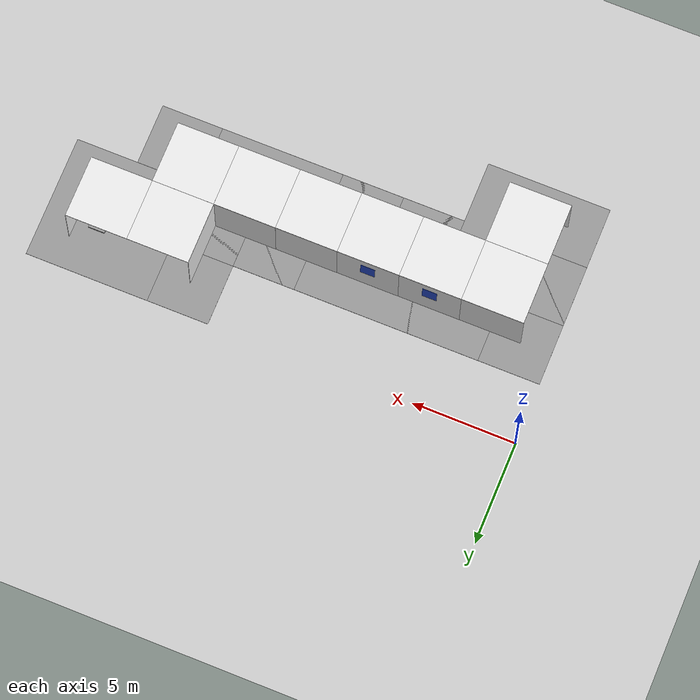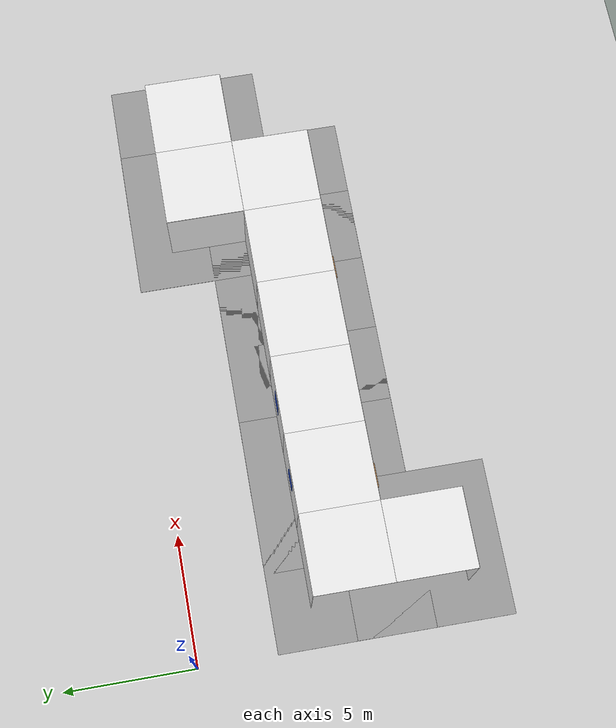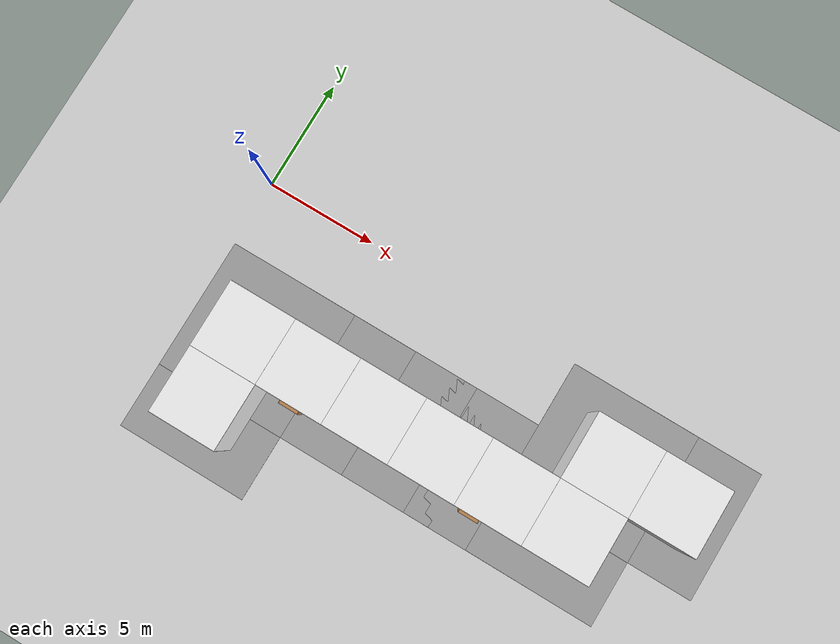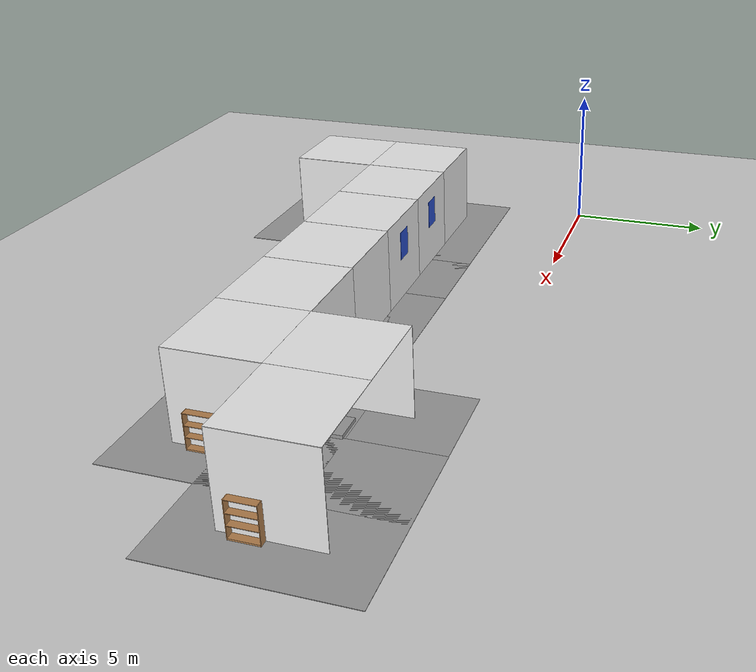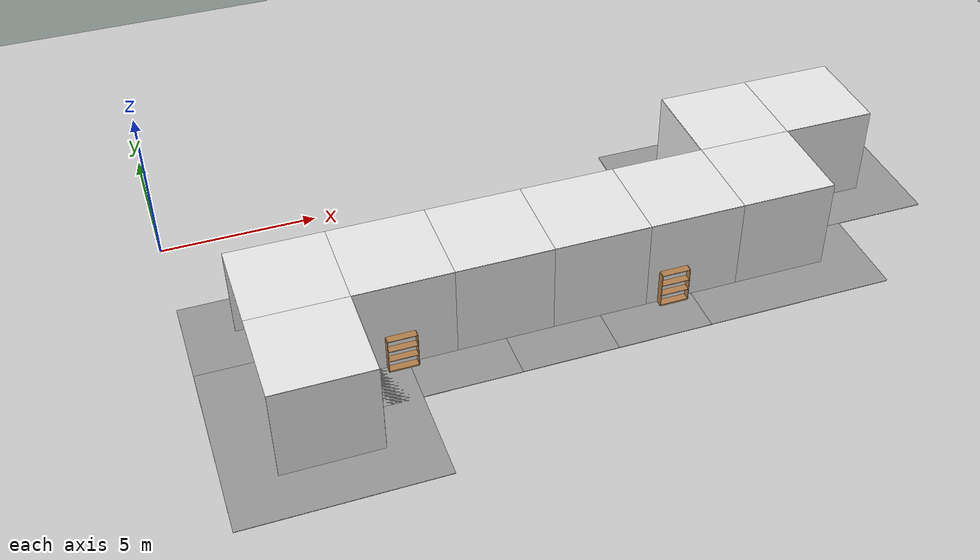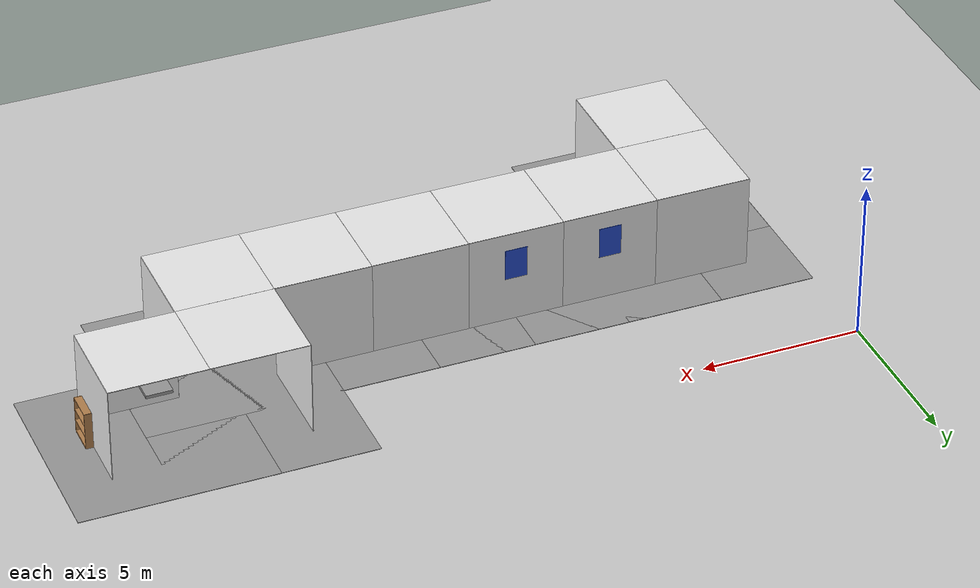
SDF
<sdf version="1.6">
 <world name="default">
  <model name="ground_plane">
   <static>1</static>
   <link name="link">
    <collision name="collision">
     <geometry><plane><normal>0 0 1</normal><size>200 200</size></plane></geometry>
     <surface><friction><ode><mu>100</mu><mu2>50</mu2></ode></friction></surface>
    </collision>
    <visual name="visual">
     <cast_shadows>0</cast_shadows>
     <geometry><plane><normal>0 0 1</normal><size>200 200</size></plane></geometry>
     <material>
      <script><uri>file://media/materials/scripts/gazebo.material</uri><name>Gazebo/Grey</name></script>
     </material>
    </visual>
   </link>
  </model>
  <model name="wall_front_7_-1_0_2">
   <static>1</static>
   <pose>21.0 -4.5 1.5 0.0 0.0 3.14</pose>
   <link name="link">
    <collision name="collision"><geometry><box><size>3 0.02 3</size></box></geometry></collision>
    <visual name="visual">
     <material>
      <script><name>Gazebo/White</name><uri>file://media/materials/scripts/gazebo.material</uri></script>
     </material>
     <geometry><box><size>3 0.02 3</size></box></geometry>
    </visual>
   </link>
  </model>
  <model name="wall_left_7_-1_0_2">
   <static>1</static>
   <pose>22.5 -3.0 1.5 0.0 0.0 4.71</pose>
   <link name="link">
    <collision name="collision"><geometry><box><size>3 0.02 3</size></box></geometry></collision>
    <visual name="visual">
     <material>
      <script><name>Gazebo/White</name><uri>file://media/materials/scripts/gazebo.material</uri></script>
     </material>
     <geometry><box><size>3 0.02 3</size></box></geometry>
    </visual>
   </link>
  </model>
  <model name="wall_top_7_-1_0_2">
   <static>1</static>
   <pose>21.0 -3.0 3.0 1.57 0.0 3.14</pose>
   <link name="link">
    <collision name="collision"><geometry><box><size>3 0.02 3</size></box></geometry></collision>
    <visual name="visual">
     <material>
      <script><name>Gazebo/White</name><uri>file://media/materials/scripts/gazebo.material</uri></script>
     </material>
     <geometry><box><size>3 0.02 3</size></box></geometry>
    </visual>
   </link>
  </model>
  <model name="ceiling_1_7_-1_0_2">
   <pose>21.0 -2.0 2.55 0.0 0.0 3.14</pose>
   <link name="link_1">
    <visual name="visual">
     <geometry><box><size>0.8 1 0.1</size></box></geometry>
     <material>
      <script><uri>file://media/materials/scripts/gazebo.material</uri><name>Gazebo/Grey</name></script>
     </material>
    </visual>
    <collision name="collision"><geometry><box><size>0.8 1 0.1</size></box></geometry></collision>
   </link>
   <static>1</static>
  </model>
  <model name="ceiling_1_7_-1_1_2">
   <pose>20.0 -3.0 2.55 0.0 0.0 4.71</pose>
   <link name="link_1">
    <visual name="visual">
     <geometry><box><size>0.8 1 0.1</size></box></geometry>
     <material>
      <script><uri>file://media/materials/scripts/gazebo.material</uri><name>Gazebo/Grey</name></script>
     </material>
    </visual>
    <collision name="collision"><geometry><box><size>0.8 1 0.1</size></box></geometry></collision>
   </link>
   <static>1</static>
  </model>
  <model name="bookshelf_7_-1_0_2">
   <static>true</static>
   <pose>22.35 -3.6063581885775 0.0 0.0 0.0 3.14</pose>
   <link name="link">
    <pose>0 0 0 0 0 -1.57</pose>
    <inertial><mass>1.0</mass></inertial>
    <collision name="back">
     <pose>0 0.005 0.6 0 0 0</pose>
     <geometry><box><size>0.9 0.01 1.2</size></box></geometry>
    </collision>
    <visual name="visual1">
     <pose>0 0.005 0.6 0 0 0</pose>
     <geometry><box><size>0.9 0.01 1.2</size></box></geometry>
     <material>
      <script><uri>file://media/materials/scripts/gazebo.material</uri><name>Gazebo/Wood</name></script>
     </material>
    </visual>
    <collision name="left_side">
     <pose>0.45 -0.195 0.6 0 0 0</pose>
     <geometry><box><size>0.02 0.4 1.2</size></box></geometry>
    </collision>
    <visual name="visual2">
     <pose>0.45 -0.195 0.6 0 0 0</pose>
     <geometry><box><size>0.02 0.4 1.2</size></box></geometry>
     <material>
      <script><uri>file://media/materials/scripts/gazebo.material</uri><name>Gazebo/Wood</name></script>
     </material>
    </visual>
    <collision name="right_side">
     <pose>-0.45 -0.195 0.6 0 0 0</pose>
     <geometry><box><size>0.02 0.4 1.2</size></box></geometry>
    </collision>
    <visual name="visual3">
     <pose>-0.45 -0.195 0.6 0 0 0</pose>
     <geometry><box><size>0.02 0.4 1.2</size></box></geometry>
     <material>
      <script><uri>file://media/materials/scripts/gazebo.material</uri><name>Gazebo/Wood</name></script>
     </material>
    </visual>
    <collision name="bottom">
     <pose>0 -0.195 0.03 0 0 0</pose>
     <geometry><box><size>0.88 0.4 0.06</size></box></geometry>
    </collision>
    <visual name="visual4">
     <pose>0 -0.195 0.03 0 0 0</pose>
     <geometry><box><size>0.88 0.4 0.06</size></box></geometry>
     <material>
      <script><uri>file://media/materials/scripts/gazebo.material</uri><name>Gazebo/Wood</name></script>
     </material>
    </visual>
    <collision name="top">
     <pose>0 -0.195 1.19 0 0 0</pose>
     <geometry><box><size>0.88 0.4 0.02</size></box></geometry>
    </collision>
    <visual name="visual5">
     <pose>0 -0.195 1.19 0 0 0</pose>
     <geometry><box><size>0.88 0.4 0.02</size></box></geometry>
     <material>
      <script><uri>file://media/materials/scripts/gazebo.material</uri><name>Gazebo/Wood</name></script>
     </material>
    </visual>
    <collision name="low_shelf">
     <pose>0 -0.195 0.43 0 0 0</pose>
     <geometry><box><size>0.88 0.4 0.02</size></box></geometry>
    </collision>
    <visual name="visual6">
     <pose>0 -0.195 0.43 0 0 0</pose>
     <geometry><box><size>0.88 0.4 0.02</size></box></geometry>
     <material>
      <script><uri>file://media/materials/scripts/gazebo.material</uri><name>Gazebo/Wood</name></script>
     </material>
    </visual>
    <collision name="high_shelf">
     <pose>0 -0.195 0.8 0 0 0</pose>
     <geometry><box><size>0.88 0.4 0.02</size></box></geometry>
    </collision>
    <visual name="visual7">
     <pose>0 -0.195 0.8 0 0 0</pose>
     <geometry><box><size>0.88 0.4 0.02</size></box></geometry>
     <material>
      <script><uri>file://media/materials/scripts/gazebo.material</uri><name>Gazebo/Wood</name></script>
     </material>
    </visual>
   </link>
  </model>
  <model name="wall_bottom_7_-1_0_2">
   <static>1</static>
   <pose>21.0 -3.0 0.0 0.0 0.0 3.14</pose>
   <link name="link">
    <collision name="collision"><geometry><box><size>6 6 0.02</size></box></geometry></collision>
    <visual name="visual">
     <material>
      <script><name>Gazebo/Grey</name><uri>file://media/materials/scripts/gazebo.material</uri></script>
     </material>
     <geometry><box><size>6 6 0.02</size></box></geometry>
    </visual>
   </link>
  </model>
  <model name="wall_front_6_-1_0_3">
   <static>1</static>
   <pose>16.5 -3.0 1.5 0.0 0.0 1.57</pose>
   <link name="link">
    <collision name="collision"><geometry><box><size>3 0.02 3</size></box></geometry></collision>
    <visual name="visual">
     <material>
      <script><name>Gazebo/White</name><uri>file://media/materials/scripts/gazebo.material</uri></script>
     </material>
     <geometry><box><size>3 0.02 3</size></box></geometry>
    </visual>
   </link>
  </model>
  <model name="wall_top_6_-1_0_3">
   <static>1</static>
   <pose>18.0 -3.0 3.0 1.57 0.0 1.57</pose>
   <link name="link">
    <collision name="collision"><geometry><box><size>3 0.02 3</size></box></geometry></collision>
    <visual name="visual">
     <material>
      <script><name>Gazebo/White</name><uri>file://media/materials/scripts/gazebo.material</uri></script>
     </material>
     <geometry><box><size>3 0.02 3</size></box></geometry>
    </visual>
   </link>
  </model>
  <model name="ceiling_1_6_-1_0_3">
   <pose>19.0 -3.0 2.55 0.0 0.0 1.57</pose>
   <link name="link_1">
    <visual name="visual">
     <geometry><box><size>0.8 1 0.1</size></box></geometry>
     <material>
      <script><uri>file://media/materials/scripts/gazebo.material</uri><name>Gazebo/Grey</name></script>
     </material>
    </visual>
    <collision name="collision"><geometry><box><size>0.8 1 0.1</size></box></geometry></collision>
   </link>
   <static>1</static>
  </model>
  <model name="ceiling_1_6_-1_1_3">
   <pose>18.0 -4.0 2.55 0.0 0.0 3.14</pose>
   <link name="link_1">
    <visual name="visual">
     <geometry><box><size>0.8 1 0.1</size></box></geometry>
     <material>
      <script><uri>file://media/materials/scripts/gazebo.material</uri><name>Gazebo/Grey</name></script>
     </material>
    </visual>
    <collision name="collision"><geometry><box><size>0.8 1 0.1</size></box></geometry></collision>
   </link>
   <static>1</static>
  </model>
  <model name="wall_bottom_6_-1_0_3">
   <static>1</static>
   <pose>18.0 -3.0 0.0 0.0 0.0 1.57</pose>
   <link name="link">
    <collision name="collision"><geometry><box><size>6 6 0.02</size></box></geometry></collision>
    <visual name="visual">
     <material>
      <script><name>Gazebo/Grey</name><uri>file://media/materials/scripts/gazebo.material</uri></script>
     </material>
     <geometry><box><size>6 6 0.02</size></box></geometry>
    </visual>
   </link>
  </model>
  <model name="wall_front_6_-2_0_2">
   <static>1</static>
   <pose>18.0 -7.5 1.5 0.0 0.0 3.14</pose>
   <link name="link">
    <collision name="collision"><geometry><box><size>3 0.02 3</size></box></geometry></collision>
    <visual name="visual">
     <material>
      <script><name>Gazebo/White</name><uri>file://media/materials/scripts/gazebo.material</uri></script>
     </material>
     <geometry><box><size>3 0.02 3</size></box></geometry>
    </visual>
   </link>
  </model>
  <model name="wall_left_6_-2_0_2">
   <static>1</static>
   <pose>19.5 -6.0 1.5 0.0 0.0 4.71</pose>
   <link name="link">
    <collision name="collision"><geometry><box><size>3 0.02 3</size></box></geometry></collision>
    <visual name="visual">
     <material>
      <script><name>Gazebo/White</name><uri>file://media/materials/scripts/gazebo.material</uri></script>
     </material>
     <geometry><box><size>3 0.02 3</size></box></geometry>
    </visual>
   </link>
  </model>
  <model name="wall_top_6_-2_0_2">
   <static>1</static>
   <pose>18.0 -6.0 3.0 1.57 0.0 3.14</pose>
   <link name="link">
    <collision name="collision"><geometry><box><size>3 0.02 3</size></box></geometry></collision>
    <visual name="visual">
     <material>
      <script><name>Gazebo/White</name><uri>file://media/materials/scripts/gazebo.material</uri></script>
     </material>
     <geometry><box><size>3 0.02 3</size></box></geometry>
    </visual>
   </link>
  </model>
  <model name="ceiling_1_6_-2_0_2">
   <pose>18.0 -5.0 2.55 0.0 0.0 3.14</pose>
   <link name="link_1">
    <visual name="visual">
     <geometry><box><size>0.8 1 0.1</size></box></geometry>
     <material>
      <script><uri>file://media/materials/scripts/gazebo.material</uri><name>Gazebo/Grey</name></script>
     </material>
    </visual>
    <collision name="collision"><geometry><box><size>0.8 1 0.1</size></box></geometry></collision>
   </link>
   <static>1</static>
  </model>
  <model name="ceiling_1_6_-2_1_2">
   <pose>17.0 -6.0 2.55 0.0 0.0 4.71</pose>
   <link name="link_1">
    <visual name="visual">
     <geometry><box><size>0.8 1 0.1</size></box></geometry>
     <material>
      <script><uri>file://media/materials/scripts/gazebo.material</uri><name>Gazebo/Grey</name></script>
     </material>
    </visual>
    <collision name="collision"><geometry><box><size>0.8 1 0.1</size></box></geometry></collision>
   </link>
   <static>1</static>
  </model>
  <model name="bookshelf_6_-2_0_2">
   <static>true</static>
   <pose>19.35 -6.469287255606 0.0 0.0 0.0 3.14</pose>
   <link name="link">
    <pose>0 0 0 0 0 -1.57</pose>
    <inertial><mass>1.0</mass></inertial>
    <collision name="back">
     <pose>0 0.005 0.6 0 0 0</pose>
     <geometry><box><size>0.9 0.01 1.2</size></box></geometry>
    </collision>
    <visual name="visual1">
     <pose>0 0.005 0.6 0 0 0</pose>
     <geometry><box><size>0.9 0.01 1.2</size></box></geometry>
     <material>
      <script><uri>file://media/materials/scripts/gazebo.material</uri><name>Gazebo/Wood</name></script>
     </material>
    </visual>
    <collision name="left_side">
     <pose>0.45 -0.195 0.6 0 0 0</pose>
     <geometry><box><size>0.02 0.4 1.2</size></box></geometry>
    </collision>
    <visual name="visual2">
     <pose>0.45 -0.195 0.6 0 0 0</pose>
     <geometry><box><size>0.02 0.4 1.2</size></box></geometry>
     <material>
      <script><uri>file://media/materials/scripts/gazebo.material</uri><name>Gazebo/Wood</name></script>
     </material>
    </visual>
    <collision name="right_side">
     <pose>-0.45 -0.195 0.6 0 0 0</pose>
     <geometry><box><size>0.02 0.4 1.2</size></box></geometry>
    </collision>
    <visual name="visual3">
     <pose>-0.45 -0.195 0.6 0 0 0</pose>
     <geometry><box><size>0.02 0.4 1.2</size></box></geometry>
     <material>
      <script><uri>file://media/materials/scripts/gazebo.material</uri><name>Gazebo/Wood</name></script>
     </material>
    </visual>
    <collision name="bottom">
     <pose>0 -0.195 0.03 0 0 0</pose>
     <geometry><box><size>0.88 0.4 0.06</size></box></geometry>
    </collision>
    <visual name="visual4">
     <pose>0 -0.195 0.03 0 0 0</pose>
     <geometry><box><size>0.88 0.4 0.06</size></box></geometry>
     <material>
      <script><uri>file://media/materials/scripts/gazebo.material</uri><name>Gazebo/Wood</name></script>
     </material>
    </visual>
    <collision name="top">
     <pose>0 -0.195 1.19 0 0 0</pose>
     <geometry><box><size>0.88 0.4 0.02</size></box></geometry>
    </collision>
    <visual name="visual5">
     <pose>0 -0.195 1.19 0 0 0</pose>
     <geometry><box><size>0.88 0.4 0.02</size></box></geometry>
     <material>
      <script><uri>file://media/materials/scripts/gazebo.material</uri><name>Gazebo/Wood</name></script>
     </material>
    </visual>
    <collision name="low_shelf">
     <pose>0 -0.195 0.43 0 0 0</pose>
     <geometry><box><size>0.88 0.4 0.02</size></box></geometry>
    </collision>
    <visual name="visual6">
     <pose>0 -0.195 0.43 0 0 0</pose>
     <geometry><box><size>0.88 0.4 0.02</size></box></geometry>
     <material>
      <script><uri>file://media/materials/scripts/gazebo.material</uri><name>Gazebo/Wood</name></script>
     </material>
    </visual>
    <collision name="high_shelf">
     <pose>0 -0.195 0.8 0 0 0</pose>
     <geometry><box><size>0.88 0.4 0.02</size></box></geometry>
    </collision>
    <visual name="visual7">
     <pose>0 -0.195 0.8 0 0 0</pose>
     <geometry><box><size>0.88 0.4 0.02</size></box></geometry>
     <material>
      <script><uri>file://media/materials/scripts/gazebo.material</uri><name>Gazebo/Wood</name></script>
     </material>
    </visual>
   </link>
  </model>
  <model name="wall_bottom_6_-2_0_2">
   <static>1</static>
   <pose>18.0 -6.0 0.0 0.0 0.0 3.14</pose>
   <link name="link">
    <collision name="collision"><geometry><box><size>6 6 0.02</size></box></geometry></collision>
    <visual name="visual">
     <material>
      <script><name>Gazebo/Grey</name><uri>file://media/materials/scripts/gazebo.material</uri></script>
     </material>
     <geometry><box><size>6 6 0.02</size></box></geometry>
    </visual>
   </link>
  </model>
  <model name="wall_right_5_-2_0_1">
   <static>1</static>
   <pose>15.0 -4.5 1.5 0.0 0.0 3.14</pose>
   <link name="link">
    <collision name="collision"><geometry><box><size>3 0.02 3</size></box></geometry></collision>
    <visual name="visual">
     <material>
      <script><name>Gazebo/White</name><uri>file://media/materials/scripts/gazebo.material</uri></script>
     </material>
     <geometry><box><size>3 0.02 3</size></box></geometry>
    </visual>
   </link>
  </model>
  <model name="wall_left_5_-2_0_1">
   <static>1</static>
   <pose>15.0 -7.5 1.5 0.0 0.0 3.14</pose>
   <link name="link">
    <collision name="collision"><geometry><box><size>3 0.02 3</size></box></geometry></collision>
    <visual name="visual">
     <material>
      <script><name>Gazebo/White</name><uri>file://media/materials/scripts/gazebo.material</uri></script>
     </material>
     <geometry><box><size>3 0.02 3</size></box></geometry>
    </visual>
   </link>
  </model>
  <model name="wall_top_5_-2_0_1">
   <static>1</static>
   <pose>15.0 -6.0 3.0 1.57 0.0 1.57</pose>
   <link name="link">
    <collision name="collision"><geometry><box><size>3 0.02 3</size></box></geometry></collision>
    <visual name="visual">
     <material>
      <script><name>Gazebo/White</name><uri>file://media/materials/scripts/gazebo.material</uri></script>
     </material>
     <geometry><box><size>3 0.02 3</size></box></geometry>
    </visual>
   </link>
  </model>
  <model name="ceiling_1_5_-2_0_1">
   <pose>15.0 -6.0 2.55 0.0 0.0 1.57</pose>
   <link name="link_1">
    <visual name="visual">
     <geometry><box><size>0.8 1 0.1</size></box></geometry>
     <material>
      <script><uri>file://media/materials/scripts/gazebo.material</uri><name>Gazebo/Grey</name></script>
     </material>
    </visual>
    <collision name="collision"><geometry><box><size>0.8 1 0.1</size></box></geometry></collision>
   </link>
   <static>1</static>
  </model>
  <model name="ceiling_1_5_-2_1_1">
   <pose>16.0 -6.0 2.55 0.0 0.0 1.57</pose>
   <link name="link_1">
    <visual name="visual">
     <geometry><box><size>0.8 1 0.1</size></box></geometry>
     <material>
      <script><uri>file://media/materials/scripts/gazebo.material</uri><name>Gazebo/Grey</name></script>
     </material>
    </visual>
    <collision name="collision"><geometry><box><size>0.8 1 0.1</size></box></geometry></collision>
   </link>
   <static>1</static>
  </model>
  <model name="ceiling_1_5_-2_2_1">
   <pose>14.0 -6.0 2.55 0.0 0.0 1.57</pose>
   <link name="link_1">
    <visual name="visual">
     <geometry><box><size>0.8 1 0.1</size></box></geometry>
     <material>
      <script><uri>file://media/materials/scripts/gazebo.material</uri><name>Gazebo/Grey</name></script>
     </material>
    </visual>
    <collision name="collision"><geometry><box><size>0.8 1 0.1</size></box></geometry></collision>
   </link>
   <static>1</static>
  </model>
  <model name="bookshelf_5_-2_0_1">
   <static>true</static>
   <pose>14.3272626569595 -7.35 0.0 0.0 0.0 1.57</pose>
   <link name="link">
    <pose>0 0 0 0 0 -1.57</pose>
    <inertial><mass>1.0</mass></inertial>
    <collision name="back">
     <pose>0 0.005 0.6 0 0 0</pose>
     <geometry><box><size>0.9 0.01 1.2</size></box></geometry>
    </collision>
    <visual name="visual1">
     <pose>0 0.005 0.6 0 0 0</pose>
     <geometry><box><size>0.9 0.01 1.2</size></box></geometry>
     <material>
      <script><uri>file://media/materials/scripts/gazebo.material</uri><name>Gazebo/Wood</name></script>
     </material>
    </visual>
    <collision name="left_side">
     <pose>0.45 -0.195 0.6 0 0 0</pose>
     <geometry><box><size>0.02 0.4 1.2</size></box></geometry>
    </collision>
    <visual name="visual2">
     <pose>0.45 -0.195 0.6 0 0 0</pose>
     <geometry><box><size>0.02 0.4 1.2</size></box></geometry>
     <material>
      <script><uri>file://media/materials/scripts/gazebo.material</uri><name>Gazebo/Wood</name></script>
     </material>
    </visual>
    <collision name="right_side">
     <pose>-0.45 -0.195 0.6 0 0 0</pose>
     <geometry><box><size>0.02 0.4 1.2</size></box></geometry>
    </collision>
    <visual name="visual3">
     <pose>-0.45 -0.195 0.6 0 0 0</pose>
     <geometry><box><size>0.02 0.4 1.2</size></box></geometry>
     <material>
      <script><uri>file://media/materials/scripts/gazebo.material</uri><name>Gazebo/Wood</name></script>
     </material>
    </visual>
    <collision name="bottom">
     <pose>0 -0.195 0.03 0 0 0</pose>
     <geometry><box><size>0.88 0.4 0.06</size></box></geometry>
    </collision>
    <visual name="visual4">
     <pose>0 -0.195 0.03 0 0 0</pose>
     <geometry><box><size>0.88 0.4 0.06</size></box></geometry>
     <material>
      <script><uri>file://media/materials/scripts/gazebo.material</uri><name>Gazebo/Wood</name></script>
     </material>
    </visual>
    <collision name="top">
     <pose>0 -0.195 1.19 0 0 0</pose>
     <geometry><box><size>0.88 0.4 0.02</size></box></geometry>
    </collision>
    <visual name="visual5">
     <pose>0 -0.195 1.19 0 0 0</pose>
     <geometry><box><size>0.88 0.4 0.02</size></box></geometry>
     <material>
      <script><uri>file://media/materials/scripts/gazebo.material</uri><name>Gazebo/Wood</name></script>
     </material>
    </visual>
    <collision name="low_shelf">
     <pose>0 -0.195 0.43 0 0 0</pose>
     <geometry><box><size>0.88 0.4 0.02</size></box></geometry>
    </collision>
    <visual name="visual6">
     <pose>0 -0.195 0.43 0 0 0</pose>
     <geometry><box><size>0.88 0.4 0.02</size></box></geometry>
     <material>
      <script><uri>file://media/materials/scripts/gazebo.material</uri><name>Gazebo/Wood</name></script>
     </material>
    </visual>
    <collision name="high_shelf">
     <pose>0 -0.195 0.8 0 0 0</pose>
     <geometry><box><size>0.88 0.4 0.02</size></box></geometry>
    </collision>
    <visual name="visual7">
     <pose>0 -0.195 0.8 0 0 0</pose>
     <geometry><box><size>0.88 0.4 0.02</size></box></geometry>
     <material>
      <script><uri>file://media/materials/scripts/gazebo.material</uri><name>Gazebo/Wood</name></script>
     </material>
    </visual>
   </link>
  </model>
  <model name="wall_bottom_5_-2_0_1">
   <static>1</static>
   <pose>15.0 -6.0 0.0 0.0 0.0 1.57</pose>
   <link name="link">
    <collision name="collision"><geometry><box><size>6 6 0.02</size></box></geometry></collision>
    <visual name="visual">
     <material>
      <script><name>Gazebo/Grey</name><uri>file://media/materials/scripts/gazebo.material</uri></script>
     </material>
     <geometry><box><size>6 6 0.02</size></box></geometry>
    </visual>
   </link>
  </model>
  <model name="wall_right_4_-2_0_1">
   <static>1</static>
   <pose>12.0 -4.5 1.5 0.0 0.0 3.14</pose>
   <link name="link">
    <collision name="collision"><geometry><box><size>3 0.02 3</size></box></geometry></collision>
    <visual name="visual">
     <material>
      <script><name>Gazebo/White</name><uri>file://media/materials/scripts/gazebo.material</uri></script>
     </material>
     <geometry><box><size>3 0.02 3</size></box></geometry>
    </visual>
   </link>
  </model>
  <model name="wall_left_4_-2_0_1">
   <static>1</static>
   <pose>12.0 -7.5 1.5 0.0 0.0 3.14</pose>
   <link name="link">
    <collision name="collision"><geometry><box><size>3 0.02 3</size></box></geometry></collision>
    <visual name="visual">
     <material>
      <script><name>Gazebo/White</name><uri>file://media/materials/scripts/gazebo.material</uri></script>
     </material>
     <geometry><box><size>3 0.02 3</size></box></geometry>
    </visual>
   </link>
  </model>
  <model name="wall_top_4_-2_0_1">
   <static>1</static>
   <pose>12.0 -6.0 3.0 1.57 0.0 1.57</pose>
   <link name="link">
    <collision name="collision"><geometry><box><size>3 0.02 3</size></box></geometry></collision>
    <visual name="visual">
     <material>
      <script><name>Gazebo/White</name><uri>file://media/materials/scripts/gazebo.material</uri></script>
     </material>
     <geometry><box><size>3 0.02 3</size></box></geometry>
    </visual>
   </link>
  </model>
  <model name="ceiling_1_4_-2_0_1">
   <pose>12.0 -6.0 2.55 0.0 0.0 1.57</pose>
   <link name="link_1">
    <visual name="visual">
     <geometry><box><size>0.8 1 0.1</size></box></geometry>
     <material>
      <script><uri>file://media/materials/scripts/gazebo.material</uri><name>Gazebo/Grey</name></script>
     </material>
    </visual>
    <collision name="collision"><geometry><box><size>0.8 1 0.1</size></box></geometry></collision>
   </link>
   <static>1</static>
  </model>
  <model name="ceiling_1_4_-2_1_1">
   <pose>13.0 -6.0 2.55 0.0 0.0 1.57</pose>
   <link name="link_1">
    <visual name="visual">
     <geometry><box><size>0.8 1 0.1</size></box></geometry>
     <material>
      <script><uri>file://media/materials/scripts/gazebo.material</uri><name>Gazebo/Grey</name></script>
     </material>
    </visual>
    <collision name="collision"><geometry><box><size>0.8 1 0.1</size></box></geometry></collision>
   </link>
   <static>1</static>
  </model>
  <model name="ceiling_1_4_-2_2_1">
   <pose>11.0 -6.0 2.55 0.0 0.0 1.57</pose>
   <link name="link_1">
    <visual name="visual">
     <geometry><box><size>0.8 1 0.1</size></box></geometry>
     <material>
      <script><uri>file://media/materials/scripts/gazebo.material</uri><name>Gazebo/Grey</name></script>
     </material>
    </visual>
    <collision name="collision"><geometry><box><size>0.8 1 0.1</size></box></geometry></collision>
   </link>
   <static>1</static>
  </model>
  <model name="wall_bottom_4_-2_0_1">
   <static>1</static>
   <pose>12.0 -6.0 0.0 0.0 0.0 1.57</pose>
   <link name="link">
    <collision name="collision"><geometry><box><size>6 6 0.02</size></box></geometry></collision>
    <visual name="visual">
     <material>
      <script><name>Gazebo/Grey</name><uri>file://media/materials/scripts/gazebo.material</uri></script>
     </material>
     <geometry><box><size>6 6 0.02</size></box></geometry>
    </visual>
   </link>
  </model>
  <model name="wall_right_3_-2_0_1">
   <static>1</static>
   <pose>9.0 -4.5 1.5 0.0 0.0 3.14</pose>
   <link name="link">
    <collision name="collision"><geometry><box><size>3 0.02 3</size></box></geometry></collision>
    <visual name="visual">
     <material>
      <script><name>Gazebo/White</name><uri>file://media/materials/scripts/gazebo.material</uri></script>
     </material>
     <geometry><box><size>3 0.02 3</size></box></geometry>
    </visual>
   </link>
  </model>
  <model name="wall_left_3_-2_0_1">
   <static>1</static>
   <pose>9.0 -7.5 1.5 0.0 0.0 3.14</pose>
   <link name="link">
    <collision name="collision"><geometry><box><size>3 0.02 3</size></box></geometry></collision>
    <visual name="visual">
     <material>
      <script><name>Gazebo/White</name><uri>file://media/materials/scripts/gazebo.material</uri></script>
     </material>
     <geometry><box><size>3 0.02 3</size></box></geometry>
    </visual>
   </link>
  </model>
  <model name="wall_top_3_-2_0_1">
   <static>1</static>
   <pose>9.0 -6.0 3.0 1.57 0.0 1.57</pose>
   <link name="link">
    <collision name="collision"><geometry><box><size>3 0.02 3</size></box></geometry></collision>
    <visual name="visual">
     <material>
      <script><name>Gazebo/White</name><uri>file://media/materials/scripts/gazebo.material</uri></script>
     </material>
     <geometry><box><size>3 0.02 3</size></box></geometry>
    </visual>
   </link>
  </model>
  <model name="ceiling_1_3_-2_0_1">
   <pose>9.0 -6.0 2.55 0.0 0.0 1.57</pose>
   <link name="link_1">
    <visual name="visual">
     <geometry><box><size>0.8 1 0.1</size></box></geometry>
     <material>
      <script><uri>file://media/materials/scripts/gazebo.material</uri><name>Gazebo/Grey</name></script>
     </material>
    </visual>
    <collision name="collision"><geometry><box><size>0.8 1 0.1</size></box></geometry></collision>
   </link>
   <static>1</static>
  </model>
  <model name="ceiling_1_3_-2_1_1">
   <pose>10.0 -6.0 2.55 0.0 0.0 1.57</pose>
   <link name="link_1">
    <visual name="visual">
     <geometry><box><size>0.8 1 0.1</size></box></geometry>
     <material>
      <script><uri>file://media/materials/scripts/gazebo.material</uri><name>Gazebo/Grey</name></script>
     </material>
    </visual>
    <collision name="collision"><geometry><box><size>0.8 1 0.1</size></box></geometry></collision>
   </link>
   <static>1</static>
  </model>
  <model name="ceiling_1_3_-2_2_1">
   <pose>8.0 -6.0 2.55 0.0 0.0 1.57</pose>
   <link name="link_1">
    <visual name="visual">
     <geometry><box><size>0.8 1 0.1</size></box></geometry>
     <material>
      <script><uri>file://media/materials/scripts/gazebo.material</uri><name>Gazebo/Grey</name></script>
     </material>
    </visual>
    <collision name="collision"><geometry><box><size>0.8 1 0.1</size></box></geometry></collision>
   </link>
   <static>1</static>
  </model>
  <model name="wall_bottom_3_-2_0_1">
   <static>1</static>
   <pose>9.0 -6.0 0.0 0.0 0.0 1.57</pose>
   <link name="link">
    <collision name="collision"><geometry><box><size>6 6 0.02</size></box></geometry></collision>
    <visual name="visual">
     <material>
      <script><name>Gazebo/Grey</name><uri>file://media/materials/scripts/gazebo.material</uri></script>
     </material>
     <geometry><box><size>6 6 0.02</size></box></geometry>
    </visual>
   </link>
  </model>
  <model name="panel_3_-2_0_1">
   <static>1</static>
   <pose>9.0 -4.5 1.95 0.0 0.0 1.57</pose>
   <link name="link">
    <collision name="collision"><geometry><box><size>0.04 0.7 1</size></box></geometry></collision>
    <visual name="visual">
     <material>
      <script><name>Gazebo/Blue</name><uri>file://media/materials/scripts/gazebo.material</uri></script>
     </material>
     <geometry><box><size>0.04 0.7 1</size></box></geometry>
    </visual>
   </link>
  </model>
  <model name="wall_right_2_-2_0_1">
   <static>1</static>
   <pose>6.0 -4.5 1.5 0.0 0.0 3.14</pose>
   <link name="link">
    <collision name="collision"><geometry><box><size>3 0.02 3</size></box></geometry></collision>
    <visual name="visual">
     <material>
      <script><name>Gazebo/White</name><uri>file://media/materials/scripts/gazebo.material</uri></script>
     </material>
     <geometry><box><size>3 0.02 3</size></box></geometry>
    </visual>
   </link>
  </model>
  <model name="wall_left_2_-2_0_1">
   <static>1</static>
   <pose>6.0 -7.5 1.5 0.0 0.0 3.14</pose>
   <link name="link">
    <collision name="collision"><geometry><box><size>3 0.02 3</size></box></geometry></collision>
    <visual name="visual">
     <material>
      <script><name>Gazebo/White</name><uri>file://media/materials/scripts/gazebo.material</uri></script>
     </material>
     <geometry><box><size>3 0.02 3</size></box></geometry>
    </visual>
   </link>
  </model>
  <model name="wall_top_2_-2_0_1">
   <static>1</static>
   <pose>6.0 -6.0 3.0 1.57 0.0 1.57</pose>
   <link name="link">
    <collision name="collision"><geometry><box><size>3 0.02 3</size></box></geometry></collision>
    <visual name="visual">
     <material>
      <script><name>Gazebo/White</name><uri>file://media/materials/scripts/gazebo.material</uri></script>
     </material>
     <geometry><box><size>3 0.02 3</size></box></geometry>
    </visual>
   </link>
  </model>
  <model name="ceiling_1_2_-2_0_1">
   <pose>6.0 -6.0 2.55 0.0 0.0 1.57</pose>
   <link name="link_1">
    <visual name="visual">
     <geometry><box><size>0.8 1 0.1</size></box></geometry>
     <material>
      <script><uri>file://media/materials/scripts/gazebo.material</uri><name>Gazebo/Grey</name></script>
     </material>
    </visual>
    <collision name="collision"><geometry><box><size>0.8 1 0.1</size></box></geometry></collision>
   </link>
   <static>1</static>
  </model>
  <model name="ceiling_1_2_-2_1_1">
   <pose>7.0 -6.0 2.55 0.0 0.0 1.57</pose>
   <link name="link_1">
    <visual name="visual">
     <geometry><box><size>0.8 1 0.1</size></box></geometry>
     <material>
      <script><uri>file://media/materials/scripts/gazebo.material</uri><name>Gazebo/Grey</name></script>
     </material>
    </visual>
    <collision name="collision"><geometry><box><size>0.8 1 0.1</size></box></geometry></collision>
   </link>
   <static>1</static>
  </model>
  <model name="ceiling_1_2_-2_2_1">
   <pose>5.0 -6.0 2.55 0.0 0.0 1.57</pose>
   <link name="link_1">
    <visual name="visual">
     <geometry><box><size>0.8 1 0.1</size></box></geometry>
     <material>
      <script><uri>file://media/materials/scripts/gazebo.material</uri><name>Gazebo/Grey</name></script>
     </material>
    </visual>
    <collision name="collision"><geometry><box><size>0.8 1 0.1</size></box></geometry></collision>
   </link>
   <static>1</static>
  </model>
  <model name="bookshelf_2_-2_0_1">
   <static>true</static>
   <pose>5.809645464165 -7.35 0.0 0.0 0.0 1.57</pose>
   <link name="link">
    <pose>0 0 0 0 0 -1.57</pose>
    <inertial><mass>1.0</mass></inertial>
    <collision name="back">
     <pose>0 0.005 0.6 0 0 0</pose>
     <geometry><box><size>0.9 0.01 1.2</size></box></geometry>
    </collision>
    <visual name="visual1">
     <pose>0 0.005 0.6 0 0 0</pose>
     <geometry><box><size>0.9 0.01 1.2</size></box></geometry>
     <material>
      <script><uri>file://media/materials/scripts/gazebo.material</uri><name>Gazebo/Wood</name></script>
     </material>
    </visual>
    <collision name="left_side">
     <pose>0.45 -0.195 0.6 0 0 0</pose>
     <geometry><box><size>0.02 0.4 1.2</size></box></geometry>
    </collision>
    <visual name="visual2">
     <pose>0.45 -0.195 0.6 0 0 0</pose>
     <geometry><box><size>0.02 0.4 1.2</size></box></geometry>
     <material>
      <script><uri>file://media/materials/scripts/gazebo.material</uri><name>Gazebo/Wood</name></script>
     </material>
    </visual>
    <collision name="right_side">
     <pose>-0.45 -0.195 0.6 0 0 0</pose>
     <geometry><box><size>0.02 0.4 1.2</size></box></geometry>
    </collision>
    <visual name="visual3">
     <pose>-0.45 -0.195 0.6 0 0 0</pose>
     <geometry><box><size>0.02 0.4 1.2</size></box></geometry>
     <material>
      <script><uri>file://media/materials/scripts/gazebo.material</uri><name>Gazebo/Wood</name></script>
     </material>
    </visual>
    <collision name="bottom">
     <pose>0 -0.195 0.03 0 0 0</pose>
     <geometry><box><size>0.88 0.4 0.06</size></box></geometry>
    </collision>
    <visual name="visual4">
     <pose>0 -0.195 0.03 0 0 0</pose>
     <geometry><box><size>0.88 0.4 0.06</size></box></geometry>
     <material>
      <script><uri>file://media/materials/scripts/gazebo.material</uri><name>Gazebo/Wood</name></script>
     </material>
    </visual>
    <collision name="top">
     <pose>0 -0.195 1.19 0 0 0</pose>
     <geometry><box><size>0.88 0.4 0.02</size></box></geometry>
    </collision>
    <visual name="visual5">
     <pose>0 -0.195 1.19 0 0 0</pose>
     <geometry><box><size>0.88 0.4 0.02</size></box></geometry>
     <material>
      <script><uri>file://media/materials/scripts/gazebo.material</uri><name>Gazebo/Wood</name></script>
     </material>
    </visual>
    <collision name="low_shelf">
     <pose>0 -0.195 0.43 0 0 0</pose>
     <geometry><box><size>0.88 0.4 0.02</size></box></geometry>
    </collision>
    <visual name="visual6">
     <pose>0 -0.195 0.43 0 0 0</pose>
     <geometry><box><size>0.88 0.4 0.02</size></box></geometry>
     <material>
      <script><uri>file://media/materials/scripts/gazebo.material</uri><name>Gazebo/Wood</name></script>
     </material>
    </visual>
    <collision name="high_shelf">
     <pose>0 -0.195 0.8 0 0 0</pose>
     <geometry><box><size>0.88 0.4 0.02</size></box></geometry>
    </collision>
    <visual name="visual7">
     <pose>0 -0.195 0.8 0 0 0</pose>
     <geometry><box><size>0.88 0.4 0.02</size></box></geometry>
     <material>
      <script><uri>file://media/materials/scripts/gazebo.material</uri><name>Gazebo/Wood</name></script>
     </material>
    </visual>
   </link>
  </model>
  <model name="wall_bottom_2_-2_0_1">
   <static>1</static>
   <pose>6.0 -6.0 0.0 0.0 0.0 1.57</pose>
   <link name="link">
    <collision name="collision"><geometry><box><size>6 6 0.02</size></box></geometry></collision>
    <visual name="visual">
     <material>
      <script><name>Gazebo/Grey</name><uri>file://media/materials/scripts/gazebo.material</uri></script>
     </material>
     <geometry><box><size>6 6 0.02</size></box></geometry>
    </visual>
   </link>
  </model>
  <model name="panel_2_-2_0_1">
   <static>1</static>
   <pose>6.0 -4.5 1.95 0.0 0.0 1.57</pose>
   <link name="link">
    <collision name="collision"><geometry><box><size>0.04 0.7 1</size></box></geometry></collision>
    <visual name="visual">
     <material>
      <script><name>Gazebo/Blue</name><uri>file://media/materials/scripts/gazebo.material</uri></script>
     </material>
     <geometry><box><size>0.04 0.7 1</size></box></geometry>
    </visual>
   </link>
  </model>
  <model name="wall_right_1_-2_0_3">
   <static>1</static>
   <pose>3.0 -4.5 1.5 0.0 0.0 3.14</pose>
   <link name="link">
    <collision name="collision"><geometry><box><size>3 0.02 3</size></box></geometry></collision>
    <visual name="visual">
     <material>
      <script><name>Gazebo/White</name><uri>file://media/materials/scripts/gazebo.material</uri></script>
     </material>
     <geometry><box><size>3 0.02 3</size></box></geometry>
    </visual>
   </link>
  </model>
  <model name="wall_top_1_-2_0_3">
   <static>1</static>
   <pose>3.0 -6.0 3.0 1.57 0.0 1.57</pose>
   <link name="link">
    <collision name="collision"><geometry><box><size>3 0.02 3</size></box></geometry></collision>
    <visual name="visual">
     <material>
      <script><name>Gazebo/White</name><uri>file://media/materials/scripts/gazebo.material</uri></script>
     </material>
     <geometry><box><size>3 0.02 3</size></box></geometry>
    </visual>
   </link>
  </model>
  <model name="ceiling_1_1_-2_0_3">
   <pose>4.0 -6.0 2.55 0.0 0.0 1.57</pose>
   <link name="link_1">
    <visual name="visual">
     <geometry><box><size>0.8 1 0.1</size></box></geometry>
     <material>
      <script><uri>file://media/materials/scripts/gazebo.material</uri><name>Gazebo/Grey</name></script>
     </material>
    </visual>
    <collision name="collision"><geometry><box><size>0.8 1 0.1</size></box></geometry></collision>
   </link>
   <static>1</static>
  </model>
  <model name="ceiling_1_1_-2_1_3">
   <pose>3.0 -7.0 2.55 0.0 0.0 3.14</pose>
   <link name="link_1">
    <visual name="visual">
     <geometry><box><size>0.8 1 0.1</size></box></geometry>
     <material>
      <script><uri>file://media/materials/scripts/gazebo.material</uri><name>Gazebo/Grey</name></script>
     </material>
    </visual>
    <collision name="collision"><geometry><box><size>0.8 1 0.1</size></box></geometry></collision>
   </link>
   <static>1</static>
  </model>
  <model name="bookshelf_1_-2_0_3">
   <static>true</static>
   <pose>3.7255474365675 -4.65 0.0 0.0 0.0 1.57</pose>
   <link name="link">
    <pose>0 0 0 0 0 -1.57</pose>
    <inertial><mass>1.0</mass></inertial>
    <collision name="back">
     <pose>0 0.005 0.6 0 0 0</pose>
     <geometry><box><size>0.9 0.01 1.2</size></box></geometry>
    </collision>
    <visual name="visual1">
     <pose>0 0.005 0.6 0 0 0</pose>
     <geometry><box><size>0.9 0.01 1.2</size></box></geometry>
     <material>
      <script><uri>file://media/materials/scripts/gazebo.material</uri><name>Gazebo/Wood</name></script>
     </material>
    </visual>
    <collision name="left_side">
     <pose>0.45 -0.195 0.6 0 0 0</pose>
     <geometry><box><size>0.02 0.4 1.2</size></box></geometry>
    </collision>
    <visual name="visual2">
     <pose>0.45 -0.195 0.6 0 0 0</pose>
     <geometry><box><size>0.02 0.4 1.2</size></box></geometry>
     <material>
      <script><uri>file://media/materials/scripts/gazebo.material</uri><name>Gazebo/Wood</name></script>
     </material>
    </visual>
    <collision name="right_side">
     <pose>-0.45 -0.195 0.6 0 0 0</pose>
     <geometry><box><size>0.02 0.4 1.2</size></box></geometry>
    </collision>
    <visual name="visual3">
     <pose>-0.45 -0.195 0.6 0 0 0</pose>
     <geometry><box><size>0.02 0.4 1.2</size></box></geometry>
     <material>
      <script><uri>file://media/materials/scripts/gazebo.material</uri><name>Gazebo/Wood</name></script>
     </material>
    </visual>
    <collision name="bottom">
     <pose>0 -0.195 0.03 0 0 0</pose>
     <geometry><box><size>0.88 0.4 0.06</size></box></geometry>
    </collision>
    <visual name="visual4">
     <pose>0 -0.195 0.03 0 0 0</pose>
     <geometry><box><size>0.88 0.4 0.06</size></box></geometry>
     <material>
      <script><uri>file://media/materials/scripts/gazebo.material</uri><name>Gazebo/Wood</name></script>
     </material>
    </visual>
    <collision name="top">
     <pose>0 -0.195 1.19 0 0 0</pose>
     <geometry><box><size>0.88 0.4 0.02</size></box></geometry>
    </collision>
    <visual name="visual5">
     <pose>0 -0.195 1.19 0 0 0</pose>
     <geometry><box><size>0.88 0.4 0.02</size></box></geometry>
     <material>
      <script><uri>file://media/materials/scripts/gazebo.material</uri><name>Gazebo/Wood</name></script>
     </material>
    </visual>
    <collision name="low_shelf">
     <pose>0 -0.195 0.43 0 0 0</pose>
     <geometry><box><size>0.88 0.4 0.02</size></box></geometry>
    </collision>
    <visual name="visual6">
     <pose>0 -0.195 0.43 0 0 0</pose>
     <geometry><box><size>0.88 0.4 0.02</size></box></geometry>
     <material>
      <script><uri>file://media/materials/scripts/gazebo.material</uri><name>Gazebo/Wood</name></script>
     </material>
    </visual>
    <collision name="high_shelf">
     <pose>0 -0.195 0.8 0 0 0</pose>
     <geometry><box><size>0.88 0.4 0.02</size></box></geometry>
    </collision>
    <visual name="visual7">
     <pose>0 -0.195 0.8 0 0 0</pose>
     <geometry><box><size>0.88 0.4 0.02</size></box></geometry>
     <material>
      <script><uri>file://media/materials/scripts/gazebo.material</uri><name>Gazebo/Wood</name></script>
     </material>
    </visual>
   </link>
  </model>
  <model name="wall_bottom_1_-2_0_3">
   <static>1</static>
   <pose>3.0 -6.0 0.0 0.0 0.0 1.57</pose>
   <link name="link">
    <collision name="collision"><geometry><box><size>6 6 0.02</size></box></geometry></collision>
    <visual name="visual">
     <material>
      <script><name>Gazebo/Grey</name><uri>file://media/materials/scripts/gazebo.material</uri></script>
     </material>
     <geometry><box><size>6 6 0.02</size></box></geometry>
    </visual>
   </link>
  </model>
  <model name="wall_front_1_-3_0_2">
   <static>1</static>
   <pose>3.0 -10.5 1.5 0.0 0.0 3.14</pose>
   <link name="link">
    <collision name="collision"><geometry><box><size>3 0.02 3</size></box></geometry></collision>
    <visual name="visual">
     <material>
      <script><name>Gazebo/White</name><uri>file://media/materials/scripts/gazebo.material</uri></script>
     </material>
     <geometry><box><size>3 0.02 3</size></box></geometry>
    </visual>
   </link>
  </model>
  <model name="wall_left_1_-3_0_2">
   <static>1</static>
   <pose>4.5 -9.0 1.5 0.0 0.0 4.71</pose>
   <link name="link">
    <collision name="collision"><geometry><box><size>3 0.02 3</size></box></geometry></collision>
    <visual name="visual">
     <material>
      <script><name>Gazebo/White</name><uri>file://media/materials/scripts/gazebo.material</uri></script>
     </material>
     <geometry><box><size>3 0.02 3</size></box></geometry>
    </visual>
   </link>
  </model>
  <model name="wall_top_1_-3_0_2">
   <static>1</static>
   <pose>3.0 -9.0 3.0 1.57 0.0 3.14</pose>
   <link name="link">
    <collision name="collision"><geometry><box><size>3 0.02 3</size></box></geometry></collision>
    <visual name="visual">
     <material>
      <script><name>Gazebo/White</name><uri>file://media/materials/scripts/gazebo.material</uri></script>
     </material>
     <geometry><box><size>3 0.02 3</size></box></geometry>
    </visual>
   </link>
  </model>
  <model name="ceiling_1_1_-3_0_2">
   <pose>3.0 -8.0 2.55 0.0 0.0 3.14</pose>
   <link name="link_1">
    <visual name="visual">
     <geometry><box><size>0.8 1 0.1</size></box></geometry>
     <material>
      <script><uri>file://media/materials/scripts/gazebo.material</uri><name>Gazebo/Grey</name></script>
     </material>
    </visual>
    <collision name="collision"><geometry><box><size>0.8 1 0.1</size></box></geometry></collision>
   </link>
   <static>1</static>
  </model>
  <model name="bookshelf_1_-3_0_2">
   <static>true</static>
   <pose>3.5280693498374998 -10.35 0.0 0.0 0.0 4.71</pose>
   <link name="link">
    <pose>0 0 0 0 0 -1.57</pose>
    <inertial><mass>1.0</mass></inertial>
    <collision name="back">
     <pose>0 0.005 0.6 0 0 0</pose>
     <geometry><box><size>0.9 0.01 1.2</size></box></geometry>
    </collision>
    <visual name="visual1">
     <pose>0 0.005 0.6 0 0 0</pose>
     <geometry><box><size>0.9 0.01 1.2</size></box></geometry>
     <material>
      <script><uri>file://media/materials/scripts/gazebo.material</uri><name>Gazebo/Wood</name></script>
     </material>
    </visual>
    <collision name="left_side">
     <pose>0.45 -0.195 0.6 0 0 0</pose>
     <geometry><box><size>0.02 0.4 1.2</size></box></geometry>
    </collision>
    <visual name="visual2">
     <pose>0.45 -0.195 0.6 0 0 0</pose>
     <geometry><box><size>0.02 0.4 1.2</size></box></geometry>
     <material>
      <script><uri>file://media/materials/scripts/gazebo.material</uri><name>Gazebo/Wood</name></script>
     </material>
    </visual>
    <collision name="right_side">
     <pose>-0.45 -0.195 0.6 0 0 0</pose>
     <geometry><box><size>0.02 0.4 1.2</size></box></geometry>
    </collision>
    <visual name="visual3">
     <pose>-0.45 -0.195 0.6 0 0 0</pose>
     <geometry><box><size>0.02 0.4 1.2</size></box></geometry>
     <material>
      <script><uri>file://media/materials/scripts/gazebo.material</uri><name>Gazebo/Wood</name></script>
     </material>
    </visual>
    <collision name="bottom">
     <pose>0 -0.195 0.03 0 0 0</pose>
     <geometry><box><size>0.88 0.4 0.06</size></box></geometry>
    </collision>
    <visual name="visual4">
     <pose>0 -0.195 0.03 0 0 0</pose>
     <geometry><box><size>0.88 0.4 0.06</size></box></geometry>
     <material>
      <script><uri>file://media/materials/scripts/gazebo.material</uri><name>Gazebo/Wood</name></script>
     </material>
    </visual>
    <collision name="top">
     <pose>0 -0.195 1.19 0 0 0</pose>
     <geometry><box><size>0.88 0.4 0.02</size></box></geometry>
    </collision>
    <visual name="visual5">
     <pose>0 -0.195 1.19 0 0 0</pose>
     <geometry><box><size>0.88 0.4 0.02</size></box></geometry>
     <material>
      <script><uri>file://media/materials/scripts/gazebo.material</uri><name>Gazebo/Wood</name></script>
     </material>
    </visual>
    <collision name="low_shelf">
     <pose>0 -0.195 0.43 0 0 0</pose>
     <geometry><box><size>0.88 0.4 0.02</size></box></geometry>
    </collision>
    <visual name="visual6">
     <pose>0 -0.195 0.43 0 0 0</pose>
     <geometry><box><size>0.88 0.4 0.02</size></box></geometry>
     <material>
      <script><uri>file://media/materials/scripts/gazebo.material</uri><name>Gazebo/Wood</name></script>
     </material>
    </visual>
    <collision name="high_shelf">
     <pose>0 -0.195 0.8 0 0 0</pose>
     <geometry><box><size>0.88 0.4 0.02</size></box></geometry>
    </collision>
    <visual name="visual7">
     <pose>0 -0.195 0.8 0 0 0</pose>
     <geometry><box><size>0.88 0.4 0.02</size></box></geometry>
     <material>
      <script><uri>file://media/materials/scripts/gazebo.material</uri><name>Gazebo/Wood</name></script>
     </material>
    </visual>
   </link>
  </model>
  <model name="wall_bottom_1_-3_0_2">
   <static>1</static>
   <pose>3.0 -9.0 0.0 0.0 0.0 3.14</pose>
   <link name="link">
    <collision name="collision"><geometry><box><size>6 6 0.02</size></box></geometry></collision>
    <visual name="visual">
     <material>
      <script><name>Gazebo/Grey</name><uri>file://media/materials/scripts/gazebo.material</uri></script>
     </material>
     <geometry><box><size>6 6 0.02</size></box></geometry>
    </visual>
   </link>
  </model>
 </world>
</sdf>
